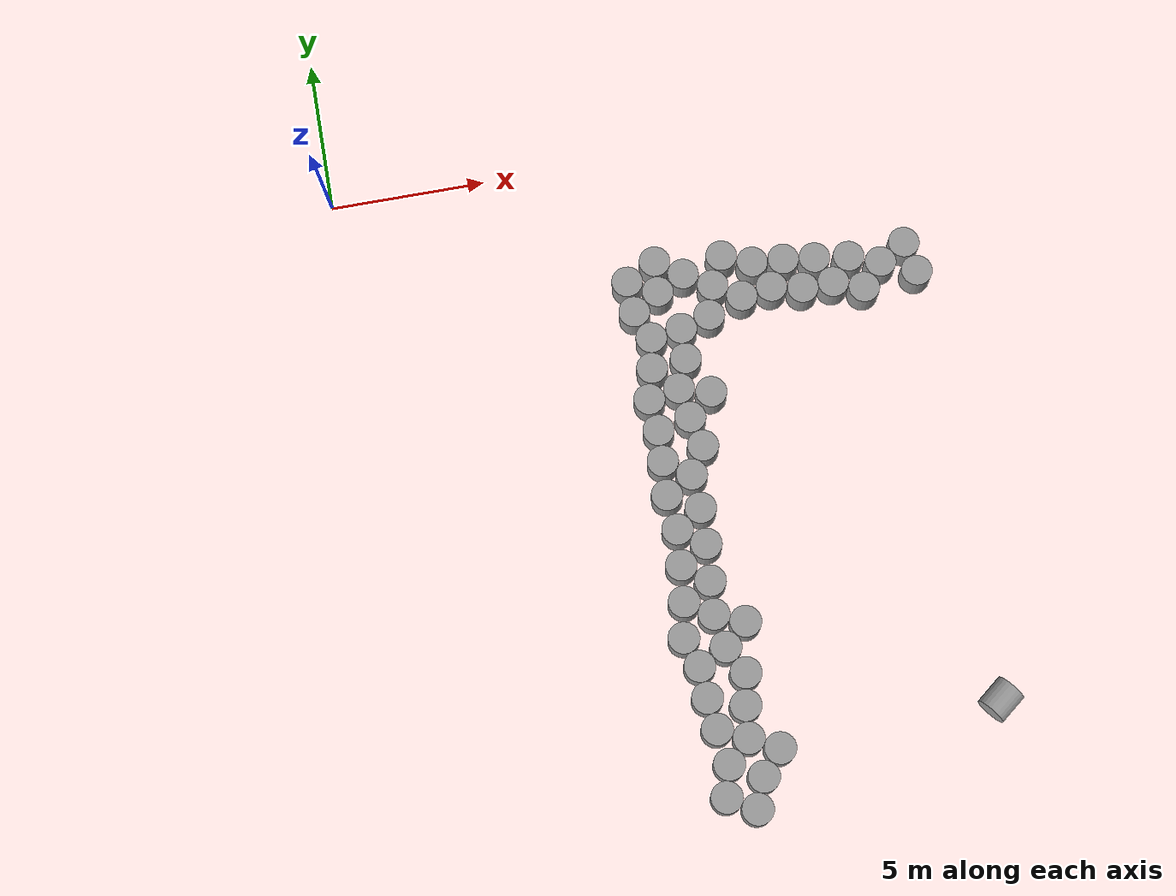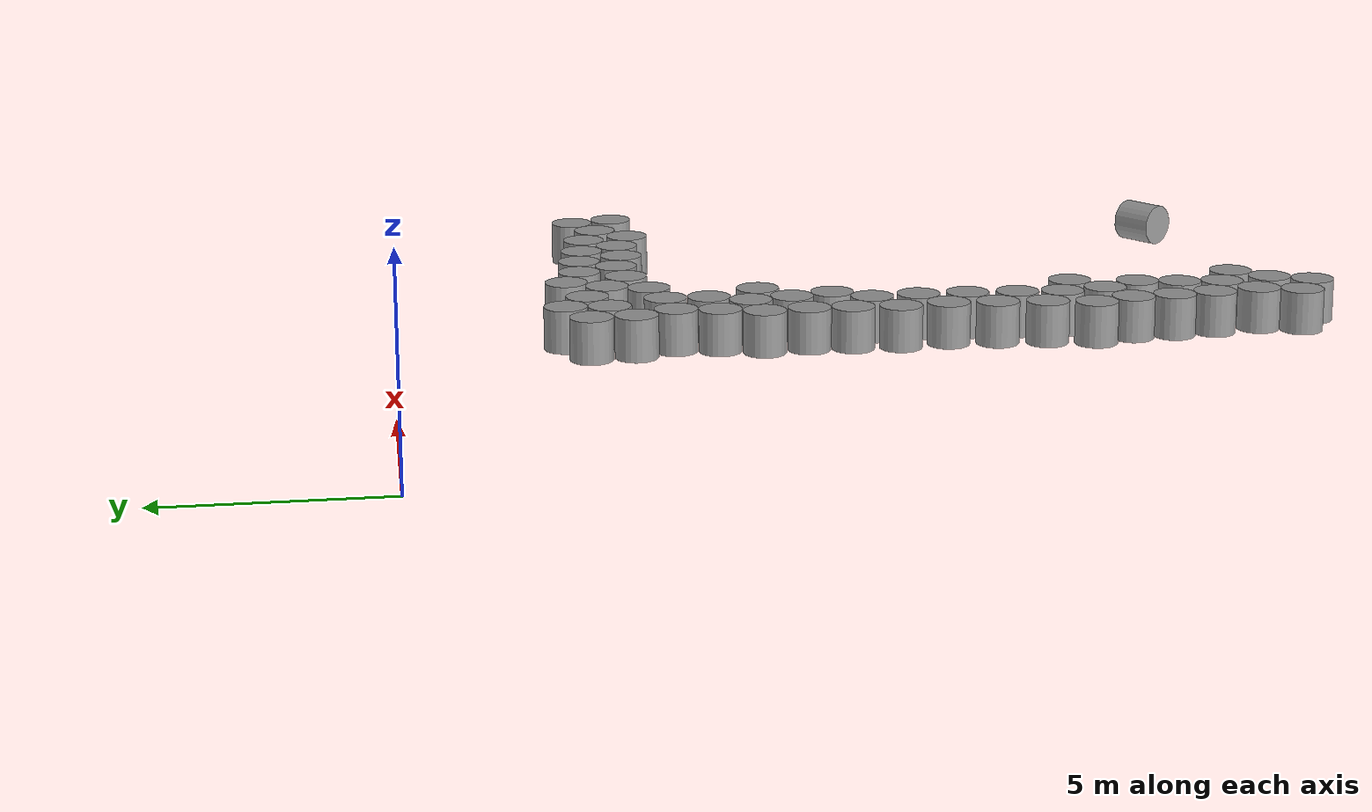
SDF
<sdf version="1.4">
 <world name="default">
  <model name="ground">
   <link name="body">
    <collision name="geom">
     <geometry><plane><normal>0 0 1</normal><size>1 1</size></plane></geometry>
     <surface><friction><ode><mu>100</mu><mu2>50</mu2></ode></friction></surface>
    </collision>
   </link>
   <static>1</static>
  </model>
  <model name="unit_cylinder_clone_30">
   <pose>17.1453 -5.23012 0.499999 2e-06 2e-06 0.191595</pose>
   <link name="link">
    <inertial>
     <mass>1</mass>
     <inertia><ixx>0.145833</ixx><ixy>0</ixy><ixz>0</ixz><iyy>0.145833</iyy><iyz>0</iyz><izz>0.125</izz></inertia>
    </inertial>
    <collision name="collision">
     <geometry><cylinder><radius>0.5</radius><length>1</length></cylinder></geometry>
    </collision>
    <visual name="visual">
     <geometry><cylinder><radius>0.5</radius><length>1</length></cylinder></geometry>
     <material>
      <script><name>Gazebo/Grey</name><uri>file://media/materials/scripts/gazebo.material</uri></script>
     </material>
    </visual>
   </link>
  </model>
  <model name="unit_cylinder_clone_31">
   <pose>18.012 -4.72658 0.499996 -2e-06 -2e-06 -0.131609</pose>
   <link name="link">
    <inertial>
     <mass>1</mass>
     <inertia><ixx>0.145833</ixx><ixy>0</ixy><ixz>0</ixz><iyy>0.145833</iyy><iyz>0</iyz><izz>0.125</izz></inertia>
    </inertial>
    <collision name="collision">
     <geometry><cylinder><radius>0.5</radius><length>1</length></cylinder></geometry>
    </collision>
    <visual name="visual">
     <geometry><cylinder><radius>0.5</radius><length>1</length></cylinder></geometry>
     <material>
      <script><name>Gazebo/Grey</name><uri>file://media/materials/scripts/gazebo.material</uri></script>
     </material>
    </visual>
   </link>
  </model>
  <model name="unit_cylinder_clone_32">
   <pose>16.1717 -4.87234 0.499999 2e-06 2e-06 0.030905</pose>
   <link name="link">
    <inertial>
     <mass>1</mass>
     <inertia><ixx>0.145833</ixx><ixy>0</ixy><ixz>0</ixz><iyy>0.145833</iyy><iyz>0</iyz><izz>0.125</izz></inertia>
    </inertial>
    <collision name="collision">
     <geometry><cylinder><radius>0.5</radius><length>1</length></cylinder></geometry>
    </collision>
    <visual name="visual">
     <geometry><cylinder><radius>0.5</radius><length>1</length></cylinder></geometry>
     <material>
      <script><name>Gazebo/Grey</name><uri>file://media/materials/scripts/gazebo.material</uri></script>
     </material>
    </visual>
   </link>
  </model>
  <model name="unit_cylinder_clone_33">
   <pose>14.0804 -4.59788 0.499991 1e-06 1e-06 0.07608</pose>
   <link name="link">
    <inertial>
     <mass>1</mass>
     <inertia><ixx>0.145833</ixx><ixy>0</ixy><ixz>0</ixz><iyy>0.145833</iyy><iyz>0</iyz><izz>0.125</izz></inertia>
    </inertial>
    <collision name="collision">
     <geometry><cylinder><radius>0.5</radius><length>1</length></cylinder></geometry>
    </collision>
    <visual name="visual">
     <geometry><cylinder><radius>0.5</radius><length>1</length></cylinder></geometry>
     <material>
      <script><name>Gazebo/Grey</name><uri>file://media/materials/scripts/gazebo.material</uri></script>
     </material>
    </visual>
   </link>
  </model>
  <model name="unit_cylinder_clone_34">
   <pose>12.141 -4.13683 0.499995 -2e-06 2e-06 -0.020771</pose>
   <link name="link">
    <inertial>
     <mass>1</mass>
     <inertia><ixx>0.145833</ixx><ixy>0</ixy><ixz>0</ixz><iyy>0.145833</iyy><iyz>0</iyz><izz>0.125</izz></inertia>
    </inertial>
    <collision name="collision">
     <geometry><cylinder><radius>0.5</radius><length>1</length></cylinder></geometry>
    </collision>
    <visual name="visual">
     <geometry><cylinder><radius>0.5</radius><length>1</length></cylinder></geometry>
     <material>
      <script><name>Gazebo/Grey</name><uri>file://media/materials/scripts/gazebo.material</uri></script>
     </material>
    </visual>
   </link>
  </model>
  <model name="unit_cylinder_clone_35">
   <pose>9.99479 -3.9577 0.499996 2e-06 -2e-06 0.001622</pose>
   <link name="link">
    <inertial>
     <mass>1</mass>
     <inertia><ixx>0.145833</ixx><ixy>0</ixy><ixz>0</ixz><iyy>0.145833</iyy><iyz>0</iyz><izz>0.125</izz></inertia>
    </inertial>
    <collision name="collision">
     <geometry><cylinder><radius>0.5</radius><length>1</length></cylinder></geometry>
    </collision>
    <visual name="visual">
     <geometry><cylinder><radius>0.5</radius><length>1</length></cylinder></geometry>
     <material>
      <script><name>Gazebo/Grey</name><uri>file://media/materials/scripts/gazebo.material</uri></script>
     </material>
    </visual>
   </link>
  </model>
  <model name="unit_cylinder_clone_36">
   <pose>9.01163 -4.46893 0.499995 2e-06 -2e-06 0.006356</pose>
   <link name="link">
    <inertial>
     <mass>1</mass>
     <inertia><ixx>0.145833</ixx><ixy>0</ixy><ixz>0</ixz><iyy>0.145833</iyy><iyz>0</iyz><izz>0.125</izz></inertia>
    </inertial>
    <collision name="collision">
     <geometry><cylinder><radius>0.5</radius><length>1</length></cylinder></geometry>
    </collision>
    <visual name="visual">
     <geometry><cylinder><radius>0.5</radius><length>1</length></cylinder></geometry>
     <material>
      <script><name>Gazebo/Grey</name><uri>file://media/materials/scripts/gazebo.material</uri></script>
     </material>
    </visual>
   </link>
  </model>
  <model name="unit_cylinder_clone_37">
   <pose>9.06382 -5.49392 0.499999 2e-06 2e-06 -0.090692</pose>
   <link name="link">
    <inertial>
     <mass>1</mass>
     <inertia><ixx>0.145833</ixx><ixy>0</ixy><ixz>0</ixz><iyy>0.145833</iyy><iyz>0</iyz><izz>0.125</izz></inertia>
    </inertial>
    <collision name="collision">
     <geometry><cylinder><radius>0.5</radius><length>1</length></cylinder></geometry>
    </collision>
    <visual name="visual">
     <geometry><cylinder><radius>0.5</radius><length>1</length></cylinder></geometry>
     <material>
      <script><name>Gazebo/Grey</name><uri>file://media/materials/scripts/gazebo.material</uri></script>
     </material>
    </visual>
   </link>
  </model>
  <model name="unit_cylinder_clone_52">
   <pose>9.16082 -21.0858 0.499995 -2e-06 2e-06 0.000424</pose>
   <link name="link">
    <inertial>
     <mass>1</mass>
     <inertia><ixx>0.145833</ixx><ixy>0</ixy><ixz>0</ixz><iyy>0.145833</iyy><iyz>0</iyz><izz>0.125</izz></inertia>
    </inertial>
    <collision name="collision">
     <geometry><cylinder><radius>0.5</radius><length>1</length></cylinder></geometry>
    </collision>
    <visual name="visual">
     <geometry><cylinder><radius>0.5</radius><length>1</length></cylinder></geometry>
     <material>
      <script><name>Gazebo/Grey</name><uri>file://media/materials/scripts/gazebo.material</uri></script>
     </material>
    </visual>
   </link>
  </model>
  <model name="unit_cylinder_clone_53">
   <pose>9.41757 -20.1193 0.49999 -1e-06 -1e-06 -0.084918</pose>
   <link name="link">
    <inertial>
     <mass>1</mass>
     <inertia><ixx>0.145833</ixx><ixy>0</ixy><ixz>0</ixz><iyy>0.145833</iyy><iyz>0</iyz><izz>0.125</izz></inertia>
    </inertial>
    <collision name="collision">
     <geometry><cylinder><radius>0.5</radius><length>1</length></cylinder></geometry>
    </collision>
    <visual name="visual">
     <geometry><cylinder><radius>0.5</radius><length>1</length></cylinder></geometry>
     <material>
      <script><name>Gazebo/Grey</name><uri>file://media/materials/scripts/gazebo.material</uri></script>
     </material>
    </visual>
   </link>
  </model>
  <model name="unit_cylinder_clone_54">
   <pose>9.24501 -19.0087 0.499999 1e-06 3e-06 -0.464959</pose>
   <link name="link">
    <inertial>
     <mass>1</mass>
     <inertia><ixx>0.145833</ixx><ixy>0</ixy><ixz>0</ixz><iyy>0.145833</iyy><iyz>0</iyz><izz>0.125</izz></inertia>
    </inertial>
    <collision name="collision">
     <geometry><cylinder><radius>0.5</radius><length>1</length></cylinder></geometry>
    </collision>
    <visual name="visual">
     <geometry><cylinder><radius>0.5</radius><length>1</length></cylinder></geometry>
     <material>
      <script><name>Gazebo/Grey</name><uri>file://media/materials/scripts/gazebo.material</uri></script>
     </material>
    </visual>
   </link>
  </model>
  <model name="unit_cylinder_clone_55">
   <pose>9.12604 -18.0156 0.499999 3e-06 2e-06 0.077936</pose>
   <link name="link">
    <inertial>
     <mass>1</mass>
     <inertia><ixx>0.145833</ixx><ixy>0</ixy><ixz>0</ixz><iyy>0.145833</iyy><iyz>0</iyz><izz>0.125</izz></inertia>
    </inertial>
    <collision name="collision">
     <geometry><cylinder><radius>0.5</radius><length>1</length></cylinder></geometry>
    </collision>
    <visual name="visual">
     <geometry><cylinder><radius>0.5</radius><length>1</length></cylinder></geometry>
     <material>
      <script><name>Gazebo/Grey</name><uri>file://media/materials/scripts/gazebo.material</uri></script>
     </material>
    </visual>
   </link>
  </model>
  <model name="unit_cylinder_clone_56">
   <pose>8.74354 -16.0712 0.499991 1e-06 1e-06 -0.023309</pose>
   <link name="link">
    <inertial>
     <mass>1</mass>
     <inertia><ixx>0.145833</ixx><ixy>0</ixy><ixz>0</ixz><iyy>0.145833</iyy><iyz>0</iyz><izz>0.125</izz></inertia>
    </inertial>
    <collision name="collision">
     <geometry><cylinder><radius>0.5</radius><length>1</length></cylinder></geometry>
    </collision>
    <visual name="visual">
     <geometry><cylinder><radius>0.5</radius><length>1</length></cylinder></geometry>
     <material>
      <script><name>Gazebo/Grey</name><uri>file://media/materials/scripts/gazebo.material</uri></script>
     </material>
    </visual>
   </link>
  </model>
  <model name="unit_cylinder_clone_57">
   <pose>9.97056 -16.57 0.499995 -2e-06 2e-06 -0.024596</pose>
   <link name="link">
    <inertial>
     <mass>1</mass>
     <inertia><ixx>0.145833</ixx><ixy>0</ixy><ixz>0</ixz><iyy>0.145833</iyy><iyz>0</iyz><izz>0.125</izz></inertia>
    </inertial>
    <collision name="collision">
     <geometry><cylinder><radius>0.5</radius><length>1</length></cylinder></geometry>
    </collision>
    <visual name="visual">
     <geometry><cylinder><radius>0.5</radius><length>1</length></cylinder></geometry>
     <material>
      <script><name>Gazebo/Grey</name><uri>file://media/materials/scripts/gazebo.material</uri></script>
     </material>
    </visual>
   </link>
  </model>
  <model name="unit_cylinder_clone_58">
   <pose>8.95343 -14.9673 0.499992 -3e-06 -2e-06 0.00438</pose>
   <link name="link">
    <inertial>
     <mass>1</mass>
     <inertia><ixx>0.145833</ixx><ixy>0</ixy><ixz>0</ixz><iyy>0.145833</iyy><iyz>0</iyz><izz>0.125</izz></inertia>
    </inertial>
    <collision name="collision">
     <geometry><cylinder><radius>0.5</radius><length>1</length></cylinder></geometry>
    </collision>
    <visual name="visual">
     <geometry><cylinder><radius>0.5</radius><length>1</length></cylinder></geometry>
     <material>
      <script><name>Gazebo/Grey</name><uri>file://media/materials/scripts/gazebo.material</uri></script>
     </material>
    </visual>
   </link>
  </model>
  <model name="unit_cylinder_clone_59">
   <pose>9.0727 -13.8207 0.499995 2e-06 -1e-06 -4e-06</pose>
   <link name="link">
    <inertial>
     <mass>1</mass>
     <inertia><ixx>0.145833</ixx><ixy>0</ixy><ixz>0</ixz><iyy>0.145833</iyy><iyz>0</iyz><izz>0.125</izz></inertia>
    </inertial>
    <collision name="collision">
     <geometry><cylinder><radius>0.5</radius><length>1</length></cylinder></geometry>
    </collision>
    <visual name="visual">
     <geometry><cylinder><radius>0.5</radius><length>1</length></cylinder></geometry>
     <material>
      <script><name>Gazebo/Grey</name><uri>file://media/materials/scripts/gazebo.material</uri></script>
     </material>
    </visual>
   </link>
  </model>
  <model name="unit_cylinder_clone_60">
   <pose>9.15863 -12.689 0.499995 2e-06 -2e-06 -5e-06</pose>
   <link name="link">
    <inertial>
     <mass>1</mass>
     <inertia><ixx>0.145833</ixx><ixy>0</ixy><ixz>0</ixz><iyy>0.145833</iyy><iyz>0</iyz><izz>0.125</izz></inertia>
    </inertial>
    <collision name="collision">
     <geometry><cylinder><radius>0.5</radius><length>1</length></cylinder></geometry>
    </collision>
    <visual name="visual">
     <geometry><cylinder><radius>0.5</radius><length>1</length></cylinder></geometry>
     <material>
      <script><name>Gazebo/Grey</name><uri>file://media/materials/scripts/gazebo.material</uri></script>
     </material>
    </visual>
   </link>
  </model>
  <model name="unit_cylinder_clone_61">
   <pose>9.03043 -11.5549 0.499995 2e-06 -1e-06 -0.001034</pose>
   <link name="link">
    <inertial>
     <mass>1</mass>
     <inertia><ixx>0.145833</ixx><ixy>0</ixy><ixz>0</ixz><iyy>0.145833</iyy><iyz>0</iyz><izz>0.125</izz></inertia>
    </inertial>
    <collision name="collision">
     <geometry><cylinder><radius>0.5</radius><length>1</length></cylinder></geometry>
    </collision>
    <visual name="visual">
     <geometry><cylinder><radius>0.5</radius><length>1</length></cylinder></geometry>
     <material>
      <script><name>Gazebo/Grey</name><uri>file://media/materials/scripts/gazebo.material</uri></script>
     </material>
    </visual>
   </link>
  </model>
  <model name="unit_cylinder_clone_62">
   <pose>9.91626 -11.0408 0.499998 -4e-06 -4e-06 0.000355</pose>
   <link name="link">
    <inertial>
     <mass>1</mass>
     <inertia><ixx>0.145833</ixx><ixy>0</ixy><ixz>0</ixz><iyy>0.145833</iyy><iyz>0</iyz><izz>0.125</izz></inertia>
    </inertial>
    <collision name="collision">
     <geometry><cylinder><radius>0.5</radius><length>1</length></cylinder></geometry>
    </collision>
    <visual name="visual">
     <geometry><cylinder><radius>0.5</radius><length>1</length></cylinder></geometry>
     <material>
      <script><name>Gazebo/Grey</name><uri>file://media/materials/scripts/gazebo.material</uri></script>
     </material>
    </visual>
   </link>
  </model>
  <model name="unit_cylinder_clone_63">
   <pose>9.13942 -9.45749 0.499998 3e-06 3e-06 -0.054989</pose>
   <link name="link">
    <inertial>
     <mass>1</mass>
     <inertia><ixx>0.145833</ixx><ixy>0</ixy><ixz>0</ixz><iyy>0.145833</iyy><iyz>0</iyz><izz>0.125</izz></inertia>
    </inertial>
    <collision name="collision">
     <geometry><cylinder><radius>0.5</radius><length>1</length></cylinder></geometry>
    </collision>
    <visual name="visual">
     <geometry><cylinder><radius>0.5</radius><length>1</length></cylinder></geometry>
     <material>
      <script><name>Gazebo/Grey</name><uri>file://media/materials/scripts/gazebo.material</uri></script>
     </material>
    </visual>
   </link>
  </model>
  <model name="unit_cylinder_clone_64">
   <pose>9.03131 -8.41493 0.500441 -0.000872 0.00017 0.44438</pose>
   <link name="link">
    <inertial>
     <mass>1</mass>
     <inertia><ixx>0.145833</ixx><ixy>0</ixy><ixz>0</ixz><iyy>0.145833</iyy><iyz>0</iyz><izz>0.125</izz></inertia>
    </inertial>
    <collision name="collision">
     <geometry><cylinder><radius>0.5</radius><length>1</length></cylinder></geometry>
    </collision>
    <visual name="visual">
     <geometry><cylinder><radius>0.5</radius><length>1</length></cylinder></geometry>
     <material>
      <script><name>Gazebo/Grey</name><uri>file://media/materials/scripts/gazebo.material</uri></script>
     </material>
    </visual>
   </link>
  </model>
  <model name="unit_cylinder_clone_65">
   <pose>9.29624 -7.42792 0.5 0 -0 0.055155</pose>
   <link name="link">
    <inertial>
     <mass>1</mass>
     <inertia><ixx>0.145833</ixx><ixy>0</ixy><ixz>0</ixz><iyy>0.145833</iyy><iyz>0</iyz><izz>0.125</izz></inertia>
    </inertial>
    <collision name="collision">
     <geometry><cylinder><radius>0.5</radius><length>1</length></cylinder></geometry>
    </collision>
    <visual name="visual">
     <geometry><cylinder><radius>0.5</radius><length>1</length></cylinder></geometry>
     <material>
      <script><name>Gazebo/Grey</name><uri>file://media/materials/scripts/gazebo.material</uri></script>
     </material>
    </visual>
   </link>
  </model>
  <model name="unit_cylinder_clone_66">
   <pose>9.44952 -6.43107 0.499994 2e-06 1e-06 0.192965</pose>
   <link name="link">
    <inertial>
     <mass>1</mass>
     <inertia><ixx>0.145833</ixx><ixy>0</ixy><ixz>0</ixz><iyy>0.145833</iyy><iyz>0</iyz><izz>0.125</izz></inertia>
    </inertial>
    <collision name="collision">
     <geometry><cylinder><radius>0.5</radius><length>1</length></cylinder></geometry>
    </collision>
    <visual name="visual">
     <geometry><cylinder><radius>0.5</radius><length>1</length></cylinder></geometry>
     <material>
      <script><name>Gazebo/Grey</name><uri>file://media/materials/scripts/gazebo.material</uri></script>
     </material>
    </visual>
   </link>
  </model>
  <model name="unit_cylinder_0">
   <pose>10.8205 -4.52399 0.499994 2e-06 2e-06 -0.212435</pose>
   <link name="link">
    <inertial>
     <mass>1</mass>
     <inertia><ixx>0.145833</ixx><ixy>0</ixy><ixz>0</ixz><iyy>0.145833</iyy><iyz>0</iyz><izz>0.125</izz></inertia>
    </inertial>
    <collision name="collision">
     <geometry><cylinder><radius>0.5</radius><length>1</length></cylinder></geometry>
    </collision>
    <visual name="visual">
     <geometry><cylinder><radius>0.5</radius><length>1</length></cylinder></geometry>
     <material>
      <script><name>Gazebo/Grey</name><uri>file://media/materials/scripts/gazebo.material</uri></script>
     </material>
    </visual>
   </link>
  </model>
  <model name="unit_cylinder_1">
   <pose>13.0822 -4.51689 0.499999 3e-06 3e-06 -0.048954</pose>
   <link name="link">
    <inertial>
     <mass>1</mass>
     <inertia><ixx>0.145833</ixx><ixy>0</ixy><ixz>0</ixz><iyy>0.145833</iyy><iyz>0</iyz><izz>0.125</izz></inertia>
    </inertial>
    <collision name="collision">
     <geometry><cylinder><radius>0.5</radius><length>1</length></cylinder></geometry>
    </collision>
    <visual name="visual">
     <geometry><cylinder><radius>0.5</radius><length>1</length></cylinder></geometry>
     <material>
      <script><name>Gazebo/Grey</name><uri>file://media/materials/scripts/gazebo.material</uri></script>
     </material>
    </visual>
   </link>
  </model>
  <model name="unit_cylinder_2">
   <pose>15.0818 -4.73004 0.499995 -2e-06 1e-06 -0.015053</pose>
   <link name="link">
    <inertial>
     <mass>1</mass>
     <inertia><ixx>0.145833</ixx><ixy>0</ixy><ixz>0</ixz><iyy>0.145833</iyy><iyz>0</iyz><izz>0.125</izz></inertia>
    </inertial>
    <collision name="collision">
     <geometry><cylinder><radius>0.5</radius><length>1</length></cylinder></geometry>
    </collision>
    <visual name="visual">
     <geometry><cylinder><radius>0.5</radius><length>1</length></cylinder></geometry>
     <material>
      <script><name>Gazebo/Grey</name><uri>file://media/materials/scripts/gazebo.material</uri></script>
     </material>
    </visual>
   </link>
  </model>
  <model name="unit_cylinder_4">
   <pose>9.91932 -4.9673 0.499992 -3e-06 -2e-06 0.054361</pose>
   <link name="link">
    <inertial>
     <mass>1</mass>
     <inertia><ixx>0.145833</ixx><ixy>0</ixy><ixz>0</ixz><iyy>0.145833</iyy><iyz>0</iyz><izz>0.125</izz></inertia>
    </inertial>
    <collision name="collision">
     <geometry><cylinder><radius>0.5</radius><length>1</length></cylinder></geometry>
    </collision>
    <visual name="visual">
     <geometry><cylinder><radius>0.5</radius><length>1</length></cylinder></geometry>
     <material>
      <script><name>Gazebo/Grey</name><uri>file://media/materials/scripts/gazebo.material</uri></script>
     </material>
    </visual>
   </link>
  </model>
  <model name="unit_cylinder_4_clone_0">
   <pose>18.2323 -5.72744 0.500614 -9.3e-05 -0.001231 0.074916</pose>
   <link name="link">
    <inertial>
     <mass>1</mass>
     <inertia><ixx>0.145833</ixx><ixy>0</ixy><ixz>0</ixz><iyy>0.145833</iyy><iyz>0</iyz><izz>0.125</izz></inertia>
    </inertial>
    <collision name="collision">
     <geometry><cylinder><radius>0.5</radius><length>1</length></cylinder></geometry>
    </collision>
    <visual name="visual">
     <geometry><cylinder><radius>0.5</radius><length>1</length></cylinder></geometry>
     <material>
      <script><name>Gazebo/Grey</name><uri>file://media/materials/scripts/gazebo.material</uri></script>
     </material>
    </visual>
   </link>
  </model>
  <model name="unit_cylinder_4_clone_37">
   <pose>18.0454 -19.6152 0.499996 1.57081 -0.095439 2.23691</pose>
   <link name="link">
    <inertial>
     <mass>1</mass>
     <inertia><ixx>0.145833</ixx><ixy>0</ixy><ixz>0</ixz><iyy>0.145833</iyy><iyz>0</iyz><izz>0.125</izz></inertia>
    </inertial>
    <collision name="collision">
     <geometry><cylinder><radius>0.5</radius><length>1</length></cylinder></geometry>
    </collision>
    <visual name="visual">
     <geometry><cylinder><radius>0.5</radius><length>1</length></cylinder></geometry>
     <material>
      <script><name>Gazebo/Grey</name><uri>file://media/materials/scripts/gazebo.material</uri></script>
     </material>
    </visual>
   </link>
  </model>
  <model name="unit_cylinder_4_clone_41">
   <pose>10.0218 -21.5954 0.499996 -2e-06 -1e-06 0.120028</pose>
   <link name="link">
    <inertial>
     <mass>1</mass>
     <inertia><ixx>0.145833</ixx><ixy>0</ixy><ixz>0</ixz><iyy>0.145833</iyy><iyz>0</iyz><izz>0.125</izz></inertia>
    </inertial>
    <collision name="collision">
     <geometry><cylinder><radius>0.5</radius><length>1</length></cylinder></geometry>
    </collision>
    <visual name="visual">
     <geometry><cylinder><radius>0.5</radius><length>1</length></cylinder></geometry>
     <material>
      <script><name>Gazebo/Grey</name><uri>file://media/materials/scripts/gazebo.material</uri></script>
     </material>
    </visual>
   </link>
  </model>
  <model name="unit_cylinder_4_clone_42">
   <pose>10.1515 -19.4396 0.499991 1e-06 1e-06 0.138853</pose>
   <link name="link">
    <inertial>
     <mass>1</mass>
     <inertia><ixx>0.145833</ixx><ixy>0</ixy><ixz>0</ixz><iyy>0.145833</iyy><iyz>0</iyz><izz>0.125</izz></inertia>
    </inertial>
    <collision name="collision">
     <geometry><cylinder><radius>0.5</radius><length>1</length></cylinder></geometry>
    </collision>
    <visual name="visual">
     <geometry><cylinder><radius>0.5</radius><length>1</length></cylinder></geometry>
     <material>
      <script><name>Gazebo/Grey</name><uri>file://media/materials/scripts/gazebo.material</uri></script>
     </material>
    </visual>
   </link>
  </model>
  <model name="unit_cylinder_4_clone_43">
   <pose>10.4303 -17.4593 0.499999 2e-06 2e-06 -0.023632</pose>
   <link name="link">
    <inertial>
     <mass>1</mass>
     <inertia><ixx>0.145833</ixx><ixy>0</ixy><ixz>0</ixz><iyy>0.145833</iyy><iyz>0</iyz><izz>0.125</izz></inertia>
    </inertial>
    <collision name="collision">
     <geometry><cylinder><radius>0.5</radius><length>1</length></cylinder></geometry>
    </collision>
    <visual name="visual">
     <geometry><cylinder><radius>0.5</radius><length>1</length></cylinder></geometry>
     <material>
      <script><name>Gazebo/Grey</name><uri>file://media/materials/scripts/gazebo.material</uri></script>
     </material>
    </visual>
   </link>
  </model>
  <model name="unit_cylinder_4_clone_44">
   <pose>9.79392 -15.5112 0.5 0 0 -0.039321</pose>
   <link name="link">
    <inertial>
     <mass>1</mass>
     <inertia><ixx>0.145833</ixx><ixy>0</ixy><ixz>0</ixz><iyy>0.145833</iyy><iyz>0</iyz><izz>0.125</izz></inertia>
    </inertial>
    <collision name="collision">
     <geometry><cylinder><radius>0.5</radius><length>1</length></cylinder></geometry>
    </collision>
    <visual name="visual">
     <geometry><cylinder><radius>0.5</radius><length>1</length></cylinder></geometry>
     <material>
      <script><name>Gazebo/Grey</name><uri>file://media/materials/scripts/gazebo.material</uri></script>
     </material>
    </visual>
   </link>
  </model>
  <model name="unit_cylinder_4_clone_45">
   <pose>9.87419 -14.4581 0.499995 2e-06 -1e-06 1.8e-05</pose>
   <link name="link">
    <inertial>
     <mass>1</mass>
     <inertia><ixx>0.145833</ixx><ixy>0</ixy><ixz>0</ixz><iyy>0.145833</iyy><iyz>0</iyz><izz>0.125</izz></inertia>
    </inertial>
    <collision name="collision">
     <geometry><cylinder><radius>0.5</radius><length>1</length></cylinder></geometry>
    </collision>
    <visual name="visual">
     <geometry><cylinder><radius>0.5</radius><length>1</length></cylinder></geometry>
     <material>
      <script><name>Gazebo/Grey</name><uri>file://media/materials/scripts/gazebo.material</uri></script>
     </material>
    </visual>
   </link>
  </model>
  <model name="unit_cylinder_4_clone_46">
   <pose>9.96021 -13.2932 0.499991 1e-06 1e-06 2.5e-05</pose>
   <link name="link">
    <inertial>
     <mass>1</mass>
     <inertia><ixx>0.145833</ixx><ixy>0</ixy><ixz>0</ixz><iyy>0.145833</iyy><iyz>0</iyz><izz>0.125</izz></inertia>
    </inertial>
    <collision name="collision">
     <geometry><cylinder><radius>0.5</radius><length>1</length></cylinder></geometry>
    </collision>
    <visual name="visual">
     <geometry><cylinder><radius>0.5</radius><length>1</length></cylinder></geometry>
     <material>
      <script><name>Gazebo/Grey</name><uri>file://media/materials/scripts/gazebo.material</uri></script>
     </material>
    </visual>
   </link>
  </model>
  <model name="unit_cylinder_4_clone_47">
   <pose>9.99505 -12.1409 0.499999 2e-06 2e-06 2e-05</pose>
   <link name="link">
    <inertial>
     <mass>1</mass>
     <inertia><ixx>0.145833</ixx><ixy>0</ixy><ixz>0</ixz><iyy>0.145833</iyy><iyz>0</iyz><izz>0.125</izz></inertia>
    </inertial>
    <collision name="collision">
     <geometry><cylinder><radius>0.5</radius><length>1</length></cylinder></geometry>
    </collision>
    <visual name="visual">
     <geometry><cylinder><radius>0.5</radius><length>1</length></cylinder></geometry>
     <material>
      <script><name>Gazebo/Grey</name><uri>file://media/materials/scripts/gazebo.material</uri></script>
     </material>
    </visual>
   </link>
  </model>
  <model name="unit_cylinder_4_clone_48">
   <pose>10.2019 -9.21001 0.499999 2e-06 2e-06 -0.011881</pose>
   <link name="link">
    <inertial>
     <mass>1</mass>
     <inertia><ixx>0.145833</ixx><ixy>0</ixy><ixz>0</ixz><iyy>0.145833</iyy><iyz>0</iyz><izz>0.125</izz></inertia>
    </inertial>
    <collision name="collision">
     <geometry><cylinder><radius>0.5</radius><length>1</length></cylinder></geometry>
    </collision>
    <visual name="visual">
     <geometry><cylinder><radius>0.5</radius><length>1</length></cylinder></geometry>
     <material>
      <script><name>Gazebo/Grey</name><uri>file://media/materials/scripts/gazebo.material</uri></script>
     </material>
    </visual>
   </link>
  </model>
  <model name="unit_cylinder_4_clone_49">
   <pose>10.4046 -7.3001 0.499998 5e-06 3e-06 0.277695</pose>
   <link name="link">
    <inertial>
     <mass>1</mass>
     <inertia><ixx>0.145833</ixx><ixy>0</ixy><ixz>0</ixz><iyy>0.145833</iyy><iyz>0</iyz><izz>0.125</izz></inertia>
    </inertial>
    <collision name="collision">
     <geometry><cylinder><radius>0.5</radius><length>1</length></cylinder></geometry>
    </collision>
    <visual name="visual">
     <geometry><cylinder><radius>0.5</radius><length>1</length></cylinder></geometry>
     <material>
      <script><name>Gazebo/Grey</name><uri>file://media/materials/scripts/gazebo.material</uri></script>
     </material>
    </visual>
   </link>
  </model>
  <model name="unit_cylinder_4_clone_50">
   <pose>10.4341 -10.1853 0.499999 3e-06 2e-06 0.0189</pose>
   <link name="link">
    <inertial>
     <mass>1</mass>
     <inertia><ixx>0.145833</ixx><ixy>0</ixy><ixz>0</ixz><iyy>0.145833</iyy><iyz>0</iyz><izz>0.125</izz></inertia>
    </inertial>
    <collision name="collision">
     <geometry><cylinder><radius>0.5</radius><length>1</length></cylinder></geometry>
    </collision>
    <visual name="visual">
     <geometry><cylinder><radius>0.5</radius><length>1</length></cylinder></geometry>
     <material>
      <script><name>Gazebo/Grey</name><uri>file://media/materials/scripts/gazebo.material</uri></script>
     </material>
    </visual>
   </link>
  </model>
  <model name="unit_cylinder_4_clone_51">
   <pose>11.0012 -8.51379 0.501194 -0.001187 0.002078 0.025802</pose>
   <link name="link">
    <inertial>
     <mass>1</mass>
     <inertia><ixx>0.145833</ixx><ixy>0</ixy><ixz>0</ixz><iyy>0.145833</iyy><iyz>0</iyz><izz>0.125</izz></inertia>
    </inertial>
    <collision name="collision">
     <geometry><cylinder><radius>0.5</radius><length>1</length></cylinder></geometry>
    </collision>
    <visual name="visual">
     <geometry><cylinder><radius>0.5</radius><length>1</length></cylinder></geometry>
     <material>
      <script><name>Gazebo/Grey</name><uri>file://media/materials/scripts/gazebo.material</uri></script>
     </material>
    </visual>
   </link>
  </model>
  <model name="unit_cylinder_4_clone_52">
   <pose>10.0173 -8.22584 0.499996 -2e-06 -2e-06 -0.102926</pose>
   <link name="link">
    <inertial>
     <mass>1</mass>
     <inertia><ixx>0.145833</ixx><ixy>0</ixy><ixz>0</ixz><iyy>0.145833</iyy><iyz>0</iyz><izz>0.125</izz></inertia>
    </inertial>
    <collision name="collision">
     <geometry><cylinder><radius>0.5</radius><length>1</length></cylinder></geometry>
    </collision>
    <visual name="visual">
     <geometry><cylinder><radius>0.5</radius><length>1</length></cylinder></geometry>
     <material>
      <script><name>Gazebo/Grey</name><uri>file://media/materials/scripts/gazebo.material</uri></script>
     </material>
    </visual>
   </link>
  </model>
  <model name="unit_cylinder_4_clone_53">
   <pose>9.09535 -10.4584 0.499995 -2e-06 2e-06 0.043761</pose>
   <link name="link">
    <inertial>
     <mass>1</mass>
     <inertia><ixx>0.145833</ixx><ixy>0</ixy><ixz>0</ixz><iyy>0.145833</iyy><iyz>0</iyz><izz>0.125</izz></inertia>
    </inertial>
    <collision name="collision">
     <geometry><cylinder><radius>0.5</radius><length>1</length></cylinder></geometry>
    </collision>
    <visual name="visual">
     <geometry><cylinder><radius>0.5</radius><length>1</length></cylinder></geometry>
     <material>
      <script><name>Gazebo/Grey</name><uri>file://media/materials/scripts/gazebo.material</uri></script>
     </material>
    </visual>
   </link>
  </model>
  <model name="unit_cylinder_4_clone_54">
   <pose>10.388 -20.6644 0.5 0 0 -0.230955</pose>
   <link name="link">
    <inertial>
     <mass>1</mass>
     <inertia><ixx>0.145833</ixx><ixy>0</ixy><ixz>0</ixz><iyy>0.145833</iyy><iyz>0</iyz><izz>0.125</izz></inertia>
    </inertial>
    <collision name="collision">
     <geometry><cylinder><radius>0.5</radius><length>1</length></cylinder></geometry>
    </collision>
    <visual name="visual">
     <geometry><cylinder><radius>0.5</radius><length>1</length></cylinder></geometry>
     <material>
      <script><name>Gazebo/Grey</name><uri>file://media/materials/scripts/gazebo.material</uri></script>
     </material>
    </visual>
   </link>
  </model>
  <model name="unit_cylinder_4_clone_55">
   <pose>10.2424 -18.4416 0.5 0 -0 0.202745</pose>
   <link name="link">
    <inertial>
     <mass>1</mass>
     <inertia><ixx>0.145833</ixx><ixy>0</ixy><ixz>0</ixz><iyy>0.145833</iyy><iyz>0</iyz><izz>0.125</izz></inertia>
    </inertial>
    <collision name="collision">
     <geometry><cylinder><radius>0.5</radius><length>1</length></cylinder></geometry>
    </collision>
    <visual name="visual">
     <geometry><cylinder><radius>0.5</radius><length>1</length></cylinder></geometry>
     <material>
      <script><name>Gazebo/Grey</name><uri>file://media/materials/scripts/gazebo.material</uri></script>
     </material>
    </visual>
   </link>
  </model>
  <model name="unit_cylinder_4_clone_60">
   <pose>11.6927 -5.05704 0.5 0 0 -0.006876</pose>
   <link name="link">
    <inertial>
     <mass>1</mass>
     <inertia><ixx>0.145833</ixx><ixy>0</ixy><ixz>0</ixz><iyy>0.145833</iyy><iyz>0</iyz><izz>0.125</izz></inertia>
    </inertial>
    <collision name="collision">
     <geometry><cylinder><radius>0.5</radius><length>1</length></cylinder></geometry>
    </collision>
    <visual name="visual">
     <geometry><cylinder><radius>0.5</radius><length>1</length></cylinder></geometry>
     <material>
      <script><name>Gazebo/Grey</name><uri>file://media/materials/scripts/gazebo.material</uri></script>
     </material>
    </visual>
   </link>
  </model>
  <model name="unit_cylinder_4_clone_61">
   <pose>12.5466 -5.57819 0.499995 1e-06 -2e-06 0.336355</pose>
   <link name="link">
    <inertial>
     <mass>1</mass>
     <inertia><ixx>0.145833</ixx><ixy>0</ixy><ixz>0</ixz><iyy>0.145833</iyy><iyz>0</iyz><izz>0.125</izz></inertia>
    </inertial>
    <collision name="collision">
     <geometry><cylinder><radius>0.5</radius><length>1</length></cylinder></geometry>
    </collision>
    <visual name="visual">
     <geometry><cylinder><radius>0.5</radius><length>1</length></cylinder></geometry>
     <material>
      <script><name>Gazebo/Grey</name><uri>file://media/materials/scripts/gazebo.material</uri></script>
     </material>
    </visual>
   </link>
  </model>
  <model name="unit_cylinder_4_clone_62">
   <pose>13.5378 -5.43786 0.499994 2e-06 2e-06 -0.099059</pose>
   <link name="link">
    <inertial>
     <mass>1</mass>
     <inertia><ixx>0.145833</ixx><ixy>0</ixy><ixz>0</ixz><iyy>0.145833</iyy><iyz>0</iyz><izz>0.125</izz></inertia>
    </inertial>
    <collision name="collision">
     <geometry><cylinder><radius>0.5</radius><length>1</length></cylinder></geometry>
    </collision>
    <visual name="visual">
     <geometry><cylinder><radius>0.5</radius><length>1</length></cylinder></geometry>
     <material>
      <script><name>Gazebo/Grey</name><uri>file://media/materials/scripts/gazebo.material</uri></script>
     </material>
    </visual>
   </link>
  </model>
  <model name="unit_cylinder_4_clone_63">
   <pose>14.5192 -5.64713 0.499995 -2e-06 3e-06 0.18279</pose>
   <link name="link">
    <inertial>
     <mass>1</mass>
     <inertia><ixx>0.145833</ixx><ixy>0</ixy><ixz>0</ixz><iyy>0.145833</iyy><iyz>0</iyz><izz>0.125</izz></inertia>
    </inertial>
    <collision name="collision">
     <geometry><cylinder><radius>0.5</radius><length>1</length></cylinder></geometry>
    </collision>
    <visual name="visual">
     <geometry><cylinder><radius>0.5</radius><length>1</length></cylinder></geometry>
     <material>
      <script><name>Gazebo/Grey</name><uri>file://media/materials/scripts/gazebo.material</uri></script>
     </material>
    </visual>
   </link>
  </model>
  <model name="unit_cylinder_4_clone_64">
   <pose>15.5192 -5.63013 0.499991 -2e-06 -2e-06 -0.186528</pose>
   <link name="link">
    <inertial>
     <mass>1</mass>
     <inertia><ixx>0.145833</ixx><ixy>0</ixy><ixz>0</ixz><iyy>0.145833</iyy><iyz>0</iyz><izz>0.125</izz></inertia>
    </inertial>
    <collision name="collision">
     <geometry><cylinder><radius>0.5</radius><length>1</length></cylinder></geometry>
    </collision>
    <visual name="visual">
     <geometry><cylinder><radius>0.5</radius><length>1</length></cylinder></geometry>
     <material>
      <script><name>Gazebo/Grey</name><uri>file://media/materials/scripts/gazebo.material</uri></script>
     </material>
    </visual>
   </link>
  </model>
  <model name="unit_cylinder_4_clone_65">
   <pose>16.4635 -5.97589 0.500828 -0.001473 -0.00077 -0.011291</pose>
   <link name="link">
    <inertial>
     <mass>1</mass>
     <inertia><ixx>0.145833</ixx><ixy>0</ixy><ixz>0</ixz><iyy>0.145833</iyy><iyz>0</iyz><izz>0.125</izz></inertia>
    </inertial>
    <collision name="collision">
     <geometry><cylinder><radius>0.5</radius><length>1</length></cylinder></geometry>
    </collision>
    <visual name="visual">
     <geometry><cylinder><radius>0.5</radius><length>1</length></cylinder></geometry>
     <material>
      <script><name>Gazebo/Grey</name><uri>file://media/materials/scripts/gazebo.material</uri></script>
     </material>
    </visual>
   </link>
  </model>
  <model name="unit_cylinder_4_clone_74">
   <pose>10.4432 -6.29935 0.499999 2e-06 2e-06 0.039275</pose>
   <link name="link">
    <inertial>
     <mass>1</mass>
     <inertia><ixx>0.145833</ixx><ixy>0</ixy><ixz>0</ixz><iyy>0.145833</iyy><iyz>0</iyz><izz>0.125</izz></inertia>
    </inertial>
    <collision name="collision">
     <geometry><cylinder><radius>0.5</radius><length>1</length></cylinder></geometry>
    </collision>
    <visual name="visual">
     <geometry><cylinder><radius>0.5</radius><length>1</length></cylinder></geometry>
     <material>
      <script><name>Gazebo/Grey</name><uri>file://media/materials/scripts/gazebo.material</uri></script>
     </material>
    </visual>
   </link>
  </model>
  <model name="unit_cylinder_4_clone_75">
   <pose>11.403 -6.01508 0.499999 2e-06 3e-06 -0.19683</pose>
   <link name="link">
    <inertial>
     <mass>1</mass>
     <inertia><ixx>0.145833</ixx><ixy>0</ixy><ixz>0</ixz><iyy>0.145833</iyy><iyz>0</iyz><izz>0.125</izz></inertia>
    </inertial>
    <collision name="collision">
     <geometry><cylinder><radius>0.5</radius><length>1</length></cylinder></geometry>
    </collision>
    <visual name="visual">
     <geometry><cylinder><radius>0.5</radius><length>1</length></cylinder></geometry>
     <material>
      <script><name>Gazebo/Grey</name><uri>file://media/materials/scripts/gazebo.material</uri></script>
     </material>
    </visual>
   </link>
  </model>
  <model name="unit_cylinder_4_clone_76">
   <pose>9.07043 -17.0163 0.499996 -2e-06 -2e-06 -0.003337</pose>
   <link name="link">
    <inertial>
     <mass>1</mass>
     <inertia><ixx>0.145833</ixx><ixy>0</ixy><ixz>0</ixz><iyy>0.145833</iyy><iyz>0</iyz><izz>0.125</izz></inertia>
    </inertial>
    <collision name="collision">
     <geometry><cylinder><radius>0.5</radius><length>1</length></cylinder></geometry>
    </collision>
    <visual name="visual">
     <geometry><cylinder><radius>0.5</radius><length>1</length></cylinder></geometry>
     <material>
      <script><name>Gazebo/Grey</name><uri>file://media/materials/scripts/gazebo.material</uri></script>
     </material>
    </visual>
   </link>
  </model>
  <model name="unit_cylinder_4_clone_85">
   <pose>11.0396 -19.9037 0.499995 2e-06 -2e-06 0.04132</pose>
   <link name="link">
    <inertial>
     <mass>1</mass>
     <inertia><ixx>0.145833</ixx><ixy>0</ixy><ixz>0</ixz><iyy>0.145833</iyy><iyz>0</iyz><izz>0.125</izz></inertia>
    </inertial>
    <collision name="collision">
     <geometry><cylinder><radius>0.5</radius><length>1</length></cylinder></geometry>
    </collision>
    <visual name="visual">
     <geometry><cylinder><radius>0.5</radius><length>1</length></cylinder></geometry>
     <material>
      <script><name>Gazebo/Grey</name><uri>file://media/materials/scripts/gazebo.material</uri></script>
     </material>
    </visual>
   </link>
  </model>
  <model name="unit_cylinder_4_clone_86">
   <pose>10.7163 -15.8986 0.499997 6e-06 7e-06 -0.019908</pose>
   <link name="link">
    <inertial>
     <mass>1</mass>
     <inertia><ixx>0.145833</ixx><ixy>0</ixy><ixz>0</ixz><iyy>0.145833</iyy><iyz>0</iyz><izz>0.125</izz></inertia>
    </inertial>
    <collision name="collision">
     <geometry><cylinder><radius>0.5</radius><length>1</length></cylinder></geometry>
    </collision>
    <visual name="visual">
     <geometry><cylinder><radius>0.5</radius><length>1</length></cylinder></geometry>
     <material>
      <script><name>Gazebo/Grey</name><uri>file://media/materials/scripts/gazebo.material</uri></script>
     </material>
    </visual>
   </link>
  </model>
 </world>
</sdf>
